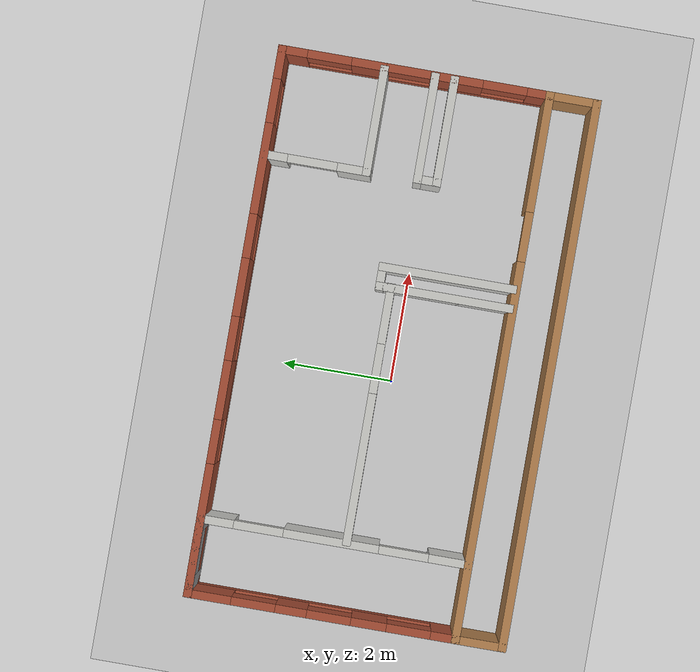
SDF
<?xml version="1.0"?>
<sdf version="1.7">
  <world name="empty_world">
    <model name="ground_plane">
      <static>1</static>
      <link name="link">
        <collision name="collision">
          <geometry>
            <plane>
              <normal>0 0 1</normal>
              <size>100 100</size>
            </plane>
          </geometry>
          <surface>
            <contact>
              <collide_bitmask>65535</collide_bitmask>
              <ode />
            </contact>
            <friction>
              <ode>
                <mu>100</mu>
                <mu2>50</mu2>
              </ode>
              <torsional>
                <ode />
              </torsional>
            </friction>
            <bounce />
          </surface>
          <max_contacts>10</max_contacts>
        </collision>
        <visual name="visual">
          <cast_shadows>0</cast_shadows>
          <geometry>
            <plane>
              <normal>0 0 1</normal>
              <size>100 100</size>
            </plane>
          </geometry>
          <material>
            <script>
              <uri>file://media/materials/scripts/gazebo.material</uri>
              <name>Gazebo/Grey</name>
            </script>
          </material>
        </visual>
        <self_collide>0</self_collide>
        <enable_wind>0</enable_wind>
        <kinematic>0</kinematic>
      </link>
    </model>
    <light name="sun" type="directional">
      <cast_shadows>1</cast_shadows>
      <pose>0 0 10 0 -0 0</pose>
      <diffuse>0.8 0.8 0.8 1</diffuse>
      <specular>0.2 0.2 0.2 1</specular>
      <attenuation>
        <range>1000</range>
        <constant>0.9</constant>
        <linear>0.01</linear>
        <quadratic>0.001</quadratic>
      </attenuation>
      <direction>-0.5 0.1 -0.9</direction>
      <spot>
        <inner_angle>0</inner_angle>
        <outer_angle>0</outer_angle>
        <falloff>0</falloff>
      </spot>
    </light>
    <physics type="ode">
      <max_step_size>0.001</max_step_size>
      <real_time_factor>1</real_time_factor>
      <real_time_update_rate>1000</real_time_update_rate>
    </physics>
    <gravity>0 0 -9.8</gravity>
    <magnetic_field>6e-06 2.3e-05 -4.2e-05</magnetic_field>
    <atmosphere type="adiabatic" />
    <scene>
      <ambient>0.4 0.4 0.4 1</ambient>
      <background>0.7 0.7 0.7 1</background>
      <shadows>1</shadows>
    </scene>
    <audio>
      <device>default</device>
    </audio>
    <wind />
    <spherical_coordinates>
      <surface_model>EARTH_WGS84</surface_model>
      <latitude_deg>0</latitude_deg>
      <longitude_deg>0</longitude_deg>
      <elevation>0</elevation>
      <heading_deg>0</heading_deg>
    </spherical_coordinates>
    <model name="Final_map">
      <pose>0.599018 0.77399 0 0 -0 0</pose>
      <link name="Wall_0">
        <pose>-0 2.1575 0 0 -0 0</pose>
        <visual name="Wall_0_Visual_0">
          <pose>-3.78964 0 1.25 0 -0 0</pose>
          <geometry>
            <box>
              <size>2.42073 0.15 2.5</size>
            </box>
          </geometry>
          <material>
            <script>
              <uri>file://media/materials/scripts/gazebo.material</uri>
              <name>Gazebo/Bricks</name>
            </script>
            <ambient>1 1 1 1</ambient>
          </material>
          <meta>
            <layer>0</layer>
          </meta>
        </visual>
        <collision name="Wall_0_Collision_0">
          <geometry>
            <box>
              <size>2.42073 0.15 2.5</size>
            </box>
          </geometry>
          <pose>-3.78964 0 1.25 0 -0 0</pose>
          <max_contacts>10</max_contacts>
          <surface>
            <contact>
              <ode />
            </contact>
            <bounce />
            <friction>
              <torsional>
                <ode />
              </torsional>
              <ode />
            </friction>
          </surface>
        </collision>
        <visual name="Wall_0_Visual_1">
          <pose>1.21036 0 0.25 0 -0 0</pose>
          <geometry>
            <box>
              <size>7.57927 0.15 0.5</size>
            </box>
          </geometry>
          <material>
            <script>
              <uri>file://media/materials/scripts/gazebo.material</uri>
              <name>Gazebo/Bricks</name>
            </script>
            <ambient>1 1 1 1</ambient>
          </material>
          <meta>
            <layer>0</layer>
          </meta>
        </visual>
        <collision name="Wall_0_Collision_1">
          <geometry>
            <box>
              <size>7.57927 0.15 0.5</size>
            </box>
          </geometry>
          <pose>1.21036 0 0.25 0 -0 0</pose>
          <max_contacts>10</max_contacts>
          <surface>
            <contact>
              <ode />
            </contact>
            <bounce />
            <friction>
              <torsional>
                <ode />
              </torsional>
              <ode />
            </friction>
          </surface>
        </collision>
        <visual name="Wall_0_Visual_2">
          <pose>-1.24394 0 1.5 0 -0 0</pose>
          <geometry>
            <box>
              <size>1.07068 0.15 2</size>
            </box>
          </geometry>
          <material>
            <script>
              <uri>file://media/materials/scripts/gazebo.material</uri>
              <name>Gazebo/Bricks</name>
            </script>
            <ambient>1 1 1 1</ambient>
          </material>
          <meta>
            <layer>0</layer>
          </meta>
        </visual>
        <collision name="Wall_0_Collision_2">
          <geometry>
            <box>
              <size>1.07068 0.15 2</size>
            </box>
          </geometry>
          <pose>-1.24394 0 1.5 0 -0 0</pose>
          <max_contacts>10</max_contacts>
          <surface>
            <contact>
              <ode />
            </contact>
            <bounce />
            <friction>
              <torsional>
                <ode />
              </torsional>
              <ode />
            </friction>
          </surface>
        </collision>
        <visual name="Wall_0_Visual_3">
          <pose>0.619136 0 1.5 0 -0 0</pose>
          <geometry>
            <box>
              <size>1.05547 0.15 2</size>
            </box>
          </geometry>
          <material>
            <script>
              <uri>file://media/materials/scripts/gazebo.material</uri>
              <name>Gazebo/Bricks</name>
            </script>
            <ambient>1 1 1 1</ambient>
          </material>
          <meta>
            <layer>0</layer>
          </meta>
        </visual>
        <collision name="Wall_0_Collision_3">
          <geometry>
            <box>
              <size>1.05547 0.15 2</size>
            </box>
          </geometry>
          <pose>0.619136 0 1.5 0 -0 0</pose>
          <max_contacts>10</max_contacts>
          <surface>
            <contact>
              <ode />
            </contact>
            <bounce />
            <friction>
              <torsional>
                <ode />
              </torsional>
              <ode />
            </friction>
          </surface>
        </collision>
        <visual name="Wall_0_Visual_4">
          <pose>2.77117 0 1.5 0 -0 0</pose>
          <geometry>
            <box>
              <size>1.64861 0.15 2</size>
            </box>
          </geometry>
          <material>
            <script>
              <uri>file://media/materials/scripts/gazebo.material</uri>
              <name>Gazebo/Bricks</name>
            </script>
            <ambient>1 1 1 1</ambient>
          </material>
          <meta>
            <layer>0</layer>
          </meta>
        </visual>
        <collision name="Wall_0_Collision_4">
          <geometry>
            <box>
              <size>1.64861 0.15 2</size>
            </box>
          </geometry>
          <pose>2.77117 0 1.5 0 -0 0</pose>
          <max_contacts>10</max_contacts>
          <surface>
            <contact>
              <ode />
            </contact>
            <bounce />
            <friction>
              <torsional>
                <ode />
              </torsional>
              <ode />
            </friction>
          </surface>
        </collision>
        <visual name="Wall_0_Visual_5">
          <pose>4.69774 0 1.5 0 -0 0</pose>
          <geometry>
            <box>
              <size>0.604521 0.15 2</size>
            </box>
          </geometry>
          <material>
            <script>
              <uri>file://media/materials/scripts/gazebo.material</uri>
              <name>Gazebo/Bricks</name>
            </script>
            <ambient>1 1 1 1</ambient>
          </material>
          <meta>
            <layer>0</layer>
          </meta>
        </visual>
        <collision name="Wall_0_Collision_5">
          <geometry>
            <box>
              <size>0.604521 0.15 2</size>
            </box>
          </geometry>
          <pose>4.69774 0 1.5 0 -0 0</pose>
          <max_contacts>10</max_contacts>
          <surface>
            <contact>
              <ode />
            </contact>
            <bounce />
            <friction>
              <torsional>
                <ode />
              </torsional>
              <ode />
            </friction>
          </surface>
        </collision>
        <visual name="Wall_0_Visual_6">
          <pose>-2.17927 0 1.9 0 -0 0</pose>
          <geometry>
            <box>
              <size>0.8 0.15 1.2</size>
            </box>
          </geometry>
          <material>
            <script>
              <uri>file://media/materials/scripts/gazebo.material</uri>
              <name>Gazebo/Bricks</name>
            </script>
            <ambient>1 1 1 1</ambient>
          </material>
          <meta>
            <layer>0</layer>
          </meta>
        </visual>
        <collision name="Wall_0_Collision_6">
          <geometry>
            <box>
              <size>0.8 0.15 1.2</size>
            </box>
          </geometry>
          <pose>-2.17927 0 1.9 0 -0 0</pose>
          <max_contacts>10</max_contacts>
          <surface>
            <contact>
              <ode />
            </contact>
            <bounce />
            <friction>
              <torsional>
                <ode />
              </torsional>
              <ode />
            </friction>
          </surface>
        </collision>
        <visual name="Wall_0_Visual_7">
          <pose>-0.308597 0 1.9 0 -0 0</pose>
          <geometry>
            <box>
              <size>0.8 0.15 1.2</size>
            </box>
          </geometry>
          <material>
            <script>
              <uri>file://media/materials/scripts/gazebo.material</uri>
              <name>Gazebo/Bricks</name>
            </script>
            <ambient>1 1 1 1</ambient>
          </material>
          <meta>
            <layer>0</layer>
          </meta>
        </visual>
        <collision name="Wall_0_Collision_7">
          <geometry>
            <box>
              <size>0.8 0.15 1.2</size>
            </box>
          </geometry>
          <pose>-0.308597 0 1.9 0 -0 0</pose>
          <max_contacts>10</max_contacts>
          <surface>
            <contact>
              <ode />
            </contact>
            <bounce />
            <friction>
              <torsional>
                <ode />
              </torsional>
              <ode />
            </friction>
          </surface>
        </collision>
        <visual name="Wall_0_Visual_8">
          <pose>1.54687 0 1.9 0 -0 0</pose>
          <geometry>
            <box>
              <size>0.8 0.15 1.2</size>
            </box>
          </geometry>
          <material>
            <script>
              <uri>file://media/materials/scripts/gazebo.material</uri>
              <name>Gazebo/Bricks</name>
            </script>
            <ambient>1 1 1 1</ambient>
          </material>
          <meta>
            <layer>0</layer>
          </meta>
        </visual>
        <collision name="Wall_0_Collision_8">
          <geometry>
            <box>
              <size>0.8 0.15 1.2</size>
            </box>
          </geometry>
          <pose>1.54687 0 1.9 0 -0 0</pose>
          <max_contacts>10</max_contacts>
          <surface>
            <contact>
              <ode />
            </contact>
            <bounce />
            <friction>
              <torsional>
                <ode />
              </torsional>
              <ode />
            </friction>
          </surface>
        </collision>
        <visual name="Wall_0_Visual_9">
          <pose>3.99548 0 1.9 0 -0 0</pose>
          <geometry>
            <box>
              <size>0.8 0.15 1.2</size>
            </box>
          </geometry>
          <material>
            <script>
              <uri>file://media/materials/scripts/gazebo.material</uri>
              <name>Gazebo/Bricks</name>
            </script>
            <ambient>1 1 1 1</ambient>
          </material>
          <meta>
            <layer>0</layer>
          </meta>
        </visual>
        <collision name="Wall_0_Collision_9">
          <geometry>
            <box>
              <size>0.8 0.15 1.2</size>
            </box>
          </geometry>
          <pose>3.99548 0 1.9 0 -0 0</pose>
          <max_contacts>10</max_contacts>
          <surface>
            <contact>
              <ode />
            </contact>
            <bounce />
            <friction>
              <torsional>
                <ode />
              </torsional>
              <ode />
            </friction>
          </surface>
        </collision>
        <self_collide>0</self_collide>
        <enable_wind>0</enable_wind>
        <kinematic>0</kinematic>
      </link>
      <link name="Wall_1">
        <pose>4.925 -0.2675 0 0 -0 -1.5708</pose>
        <visual name="Wall_1_Visual_0">
          <pose>-2.23217 0 1.25 0 -0 0</pose>
          <geometry>
            <box>
              <size>0.535656 0.15 2.5</size>
            </box>
          </geometry>
          <material>
            <script>
              <uri>file://media/materials/scripts/gazebo.material</uri>
              <name>Gazebo/Bricks</name>
            </script>
            <ambient>1 1 1 1</ambient>
          </material>
          <meta>
            <layer>0</layer>
          </meta>
        </visual>
        <collision name="Wall_1_Collision_0">
          <geometry>
            <box>
              <size>0.535656 0.15 2.5</size>
            </box>
          </geometry>
          <pose>-2.23217 0 1.25 0 -0 0</pose>
          <max_contacts>10</max_contacts>
          <surface>
            <contact>
              <ode />
            </contact>
            <bounce />
            <friction>
              <torsional>
                <ode />
              </torsional>
              <ode />
            </friction>
          </surface>
        </collision>
        <visual name="Wall_1_Visual_1">
          <pose>0.267828 0 0.25 0 -0 0</pose>
          <geometry>
            <box>
              <size>4.46434 0.15 0.5</size>
            </box>
          </geometry>
          <material>
            <script>
              <uri>file://media/materials/scripts/gazebo.material</uri>
              <name>Gazebo/Bricks</name>
            </script>
            <ambient>1 1 1 1</ambient>
          </material>
          <meta>
            <layer>0</layer>
          </meta>
        </visual>
        <collision name="Wall_1_Collision_1">
          <geometry>
            <box>
              <size>4.46434 0.15 0.5</size>
            </box>
          </geometry>
          <pose>0.267828 0 0.25 0 -0 0</pose>
          <max_contacts>10</max_contacts>
          <surface>
            <contact>
              <ode />
            </contact>
            <bounce />
            <friction>
              <torsional>
                <ode />
              </torsional>
              <ode />
            </friction>
          </surface>
        </collision>
        <visual name="Wall_1_Visual_2">
          <pose>-0.849532 0 1.5 0 -0 0</pose>
          <geometry>
            <box>
              <size>0.629622 0.15 2</size>
            </box>
          </geometry>
          <material>
            <script>
              <uri>file://media/materials/scripts/gazebo.material</uri>
              <name>Gazebo/Bricks</name>
            </script>
            <ambient>1 1 1 1</ambient>
          </material>
          <meta>
            <layer>0</layer>
          </meta>
        </visual>
        <collision name="Wall_1_Collision_2">
          <geometry>
            <box>
              <size>0.629622 0.15 2</size>
            </box>
          </geometry>
          <pose>-0.849532 0 1.5 0 -0 0</pose>
          <max_contacts>10</max_contacts>
          <surface>
            <contact>
              <ode />
            </contact>
            <bounce />
            <friction>
              <torsional>
                <ode />
              </torsional>
              <ode />
            </friction>
          </surface>
        </collision>
        <visual name="Wall_1_Visual_3">
          <pose>0.739782 0 1.5 0 -0 0</pose>
          <geometry>
            <box>
              <size>0.949007 0.15 2</size>
            </box>
          </geometry>
          <material>
            <script>
              <uri>file://media/materials/scripts/gazebo.material</uri>
              <name>Gazebo/Bricks</name>
            </script>
            <ambient>1 1 1 1</ambient>
          </material>
          <meta>
            <layer>0</layer>
          </meta>
        </visual>
        <collision name="Wall_1_Collision_3">
          <geometry>
            <box>
              <size>0.949007 0.15 2</size>
            </box>
          </geometry>
          <pose>0.739782 0 1.5 0 -0 0</pose>
          <max_contacts>10</max_contacts>
          <surface>
            <contact>
              <ode />
            </contact>
            <bounce />
            <friction>
              <torsional>
                <ode />
              </torsional>
              <ode />
            </friction>
          </surface>
        </collision>
        <visual name="Wall_1_Visual_4">
          <pose>2.25714 0 1.5 0 -0 0</pose>
          <geometry>
            <box>
              <size>0.485715 0.15 2</size>
            </box>
          </geometry>
          <material>
            <script>
              <uri>file://media/materials/scripts/gazebo.material</uri>
              <name>Gazebo/Bricks</name>
            </script>
            <ambient>1 1 1 1</ambient>
          </material>
          <meta>
            <layer>0</layer>
          </meta>
        </visual>
        <collision name="Wall_1_Collision_4">
          <geometry>
            <box>
              <size>0.485715 0.15 2</size>
            </box>
          </geometry>
          <pose>2.25714 0 1.5 0 -0 0</pose>
          <max_contacts>10</max_contacts>
          <surface>
            <contact>
              <ode />
            </contact>
            <bounce />
            <friction>
              <torsional>
                <ode />
              </torsional>
              <ode />
            </friction>
          </surface>
        </collision>
        <visual name="Wall_1_Visual_5">
          <pose>-1.56434 0 1.9 0 -0 0</pose>
          <geometry>
            <box>
              <size>0.8 0.15 1.2</size>
            </box>
          </geometry>
          <material>
            <script>
              <uri>file://media/materials/scripts/gazebo.material</uri>
              <name>Gazebo/Bricks</name>
            </script>
            <ambient>1 1 1 1</ambient>
          </material>
          <meta>
            <layer>0</layer>
          </meta>
        </visual>
        <collision name="Wall_1_Collision_5">
          <geometry>
            <box>
              <size>0.8 0.15 1.2</size>
            </box>
          </geometry>
          <pose>-1.56434 0 1.9 0 -0 0</pose>
          <max_contacts>10</max_contacts>
          <surface>
            <contact>
              <ode />
            </contact>
            <bounce />
            <friction>
              <torsional>
                <ode />
              </torsional>
              <ode />
            </friction>
          </surface>
        </collision>
        <visual name="Wall_1_Visual_6">
          <pose>-0.134721 0 1.9 0 -0 0</pose>
          <geometry>
            <box>
              <size>0.8 0.15 1.2</size>
            </box>
          </geometry>
          <material>
            <script>
              <uri>file://media/materials/scripts/gazebo.material</uri>
              <name>Gazebo/Bricks</name>
            </script>
            <ambient>1 1 1 1</ambient>
          </material>
          <meta>
            <layer>0</layer>
          </meta>
        </visual>
        <collision name="Wall_1_Collision_6">
          <geometry>
            <box>
              <size>0.8 0.15 1.2</size>
            </box>
          </geometry>
          <pose>-0.134721 0 1.9 0 -0 0</pose>
          <max_contacts>10</max_contacts>
          <surface>
            <contact>
              <ode />
            </contact>
            <bounce />
            <friction>
              <torsional>
                <ode />
              </torsional>
              <ode />
            </friction>
          </surface>
        </collision>
        <visual name="Wall_1_Visual_7">
          <pose>1.61428 0 1.9 0 -0 0</pose>
          <geometry>
            <box>
              <size>0.8 0.15 1.2</size>
            </box>
          </geometry>
          <material>
            <script>
              <uri>file://media/materials/scripts/gazebo.material</uri>
              <name>Gazebo/Bricks</name>
            </script>
            <ambient>1 1 1 1</ambient>
          </material>
          <meta>
            <layer>0</layer>
          </meta>
        </visual>
        <collision name="Wall_1_Collision_7">
          <geometry>
            <box>
              <size>0.8 0.15 1.2</size>
            </box>
          </geometry>
          <pose>1.61428 0 1.9 0 -0 0</pose>
          <max_contacts>10</max_contacts>
          <surface>
            <contact>
              <ode />
            </contact>
            <bounce />
            <friction>
              <torsional>
                <ode />
              </torsional>
              <ode />
            </friction>
          </surface>
        </collision>
        <self_collide>0</self_collide>
        <enable_wind>0</enable_wind>
        <kinematic>0</kinematic>
      </link>
      <link name="Wall_10">
        <collision name="Wall_10_Collision">
          <geometry>
            <box>
              <size>2 0.15 2.5</size>
            </box>
          </geometry>
          <pose>0 0 1.25 0 -0 0</pose>
          <max_contacts>10</max_contacts>
          <surface>
            <contact>
              <ode />
            </contact>
            <bounce />
            <friction>
              <torsional>
                <ode />
              </torsional>
              <ode />
            </friction>
          </surface>
        </collision>
        <visual name="Wall_10_Visual">
          <pose>0 0 1.25 0 -0 0</pose>
          <geometry>
            <box>
              <size>2 0.15 2.5</size>
            </box>
          </geometry>
          <material>
            <script>
              <uri>file://media/materials/scripts/gazebo.material</uri>
              <name>Gazebo/CeilingTiled</name>
            </script>
            <ambient>1 1 1 1</ambient>
          </material>
          <meta>
            <layer>0</layer>
          </meta>
        </visual>
        <pose>3.983 -0.619459 0 0 -0 3.14159</pose>
        <self_collide>0</self_collide>
        <enable_wind>0</enable_wind>
        <kinematic>0</kinematic>
      </link>
      <link name="Wall_11">
        <collision name="Wall_11_Collision">
          <geometry>
            <box>
              <size>0.5 0.15 2.5</size>
            </box>
          </geometry>
          <pose>0 0 1.25 0 -0 0</pose>
          <max_contacts>10</max_contacts>
          <surface>
            <contact>
              <ode />
            </contact>
            <bounce />
            <friction>
              <torsional>
                <ode />
              </torsional>
              <ode />
            </friction>
          </surface>
        </collision>
        <visual name="Wall_11_Visual">
          <pose>0 0 1.25 0 -0 0</pose>
          <geometry>
            <box>
              <size>0.5 0.15 2.5</size>
            </box>
          </geometry>
          <material>
            <script>
              <uri>file://media/materials/scripts/gazebo.material</uri>
              <name>Gazebo/CeilingTiled</name>
            </script>
            <ambient>1 1 1 1</ambient>
          </material>
          <meta>
            <layer>0</layer>
          </meta>
        </visual>
        <pose>3.058 -0.794459 0 0 -0 -1.5708</pose>
        <self_collide>0</self_collide>
        <enable_wind>0</enable_wind>
        <kinematic>0</kinematic>
      </link>
      <link name="Wall_12">
        <collision name="Wall_12_Collision">
          <geometry>
            <box>
              <size>2 0.15 2.5</size>
            </box>
          </geometry>
          <pose>0 0 1.25 0 -0 0</pose>
          <max_contacts>10</max_contacts>
          <surface>
            <contact>
              <ode />
            </contact>
            <bounce />
            <friction>
              <torsional>
                <ode />
              </torsional>
              <ode />
            </friction>
          </surface>
        </collision>
        <visual name="Wall_12_Visual">
          <pose>0 0 1.25 0 -0 0</pose>
          <geometry>
            <box>
              <size>2 0.15 2.5</size>
            </box>
          </geometry>
          <material>
            <script>
              <uri>file://media/materials/scripts/gazebo.material</uri>
              <name>Gazebo/CeilingTiled</name>
            </script>
            <ambient>1 1 1 1</ambient>
          </material>
          <meta>
            <layer>0</layer>
          </meta>
        </visual>
        <pose>3.983 -0.969459 0 0 -0 0</pose>
        <self_collide>0</self_collide>
        <enable_wind>0</enable_wind>
        <kinematic>0</kinematic>
      </link>
      <link name="Wall_14">
        <collision name="Wall_14_Collision">
          <geometry>
            <box>
              <size>2.5 0.15 2.5</size>
            </box>
          </geometry>
          <pose>0 0 1.25 0 -0 0</pose>
          <max_contacts>10</max_contacts>
          <surface>
            <contact>
              <ode />
            </contact>
            <bounce />
            <friction>
              <torsional>
                <ode />
              </torsional>
              <ode />
            </friction>
          </surface>
        </collision>
        <visual name="Wall_14_Visual">
          <pose>0 0 1.25 0 -0 0</pose>
          <geometry>
            <box>
              <size>2.5 0.15 2.5</size>
            </box>
          </geometry>
          <material>
            <script>
              <uri>file://media/materials/scripts/gazebo.material</uri>
              <name>Gazebo/CeilingTiled</name>
            </script>
            <ambient>1 1 1 1</ambient>
          </material>
          <meta>
            <layer>0</layer>
          </meta>
        </visual>
        <pose>1.40999 -1.45201 0 0 -0 1.5708</pose>
        <self_collide>0</self_collide>
        <enable_wind>0</enable_wind>
        <kinematic>0</kinematic>
      </link>
      <link name="Wall_15">
        <collision name="Wall_15_Collision">
          <geometry>
            <box>
              <size>0.5 0.15 2.5</size>
            </box>
          </geometry>
          <pose>0 0 1.25 0 -0 0</pose>
          <max_contacts>10</max_contacts>
          <surface>
            <contact>
              <ode />
            </contact>
            <bounce />
            <friction>
              <torsional>
                <ode />
              </torsional>
              <ode />
            </friction>
          </surface>
        </collision>
        <visual name="Wall_15_Visual">
          <pose>0 0 1.25 0 -0 0</pose>
          <geometry>
            <box>
              <size>0.5 0.15 2.5</size>
            </box>
          </geometry>
          <material>
            <script>
              <uri>file://media/materials/scripts/gazebo.material</uri>
              <name>Gazebo/CeilingTiled</name>
            </script>
            <ambient>1 1 1 1</ambient>
          </material>
          <meta>
            <layer>0</layer>
          </meta>
        </visual>
        <pose>1.23499 -0.277014 0 0 -0 3.14159</pose>
        <self_collide>0</self_collide>
        <enable_wind>0</enable_wind>
        <kinematic>0</kinematic>
      </link>
      <link name="Wall_16">
        <collision name="Wall_16_Collision">
          <geometry>
            <box>
              <size>2.5 0.15 2.5</size>
            </box>
          </geometry>
          <pose>0 0 1.25 0 -0 0</pose>
          <max_contacts>10</max_contacts>
          <surface>
            <contact>
              <ode />
            </contact>
            <bounce />
            <friction>
              <torsional>
                <ode />
              </torsional>
              <ode />
            </friction>
          </surface>
        </collision>
        <visual name="Wall_16_Visual">
          <pose>0 0 1.25 0 -0 0</pose>
          <geometry>
            <box>
              <size>2.5 0.15 2.5</size>
            </box>
          </geometry>
          <material>
            <script>
              <uri>file://media/materials/scripts/gazebo.material</uri>
              <name>Gazebo/CeilingTiled</name>
            </script>
            <ambient>1 1 1 1</ambient>
          </material>
          <meta>
            <layer>0</layer>
          </meta>
        </visual>
        <pose>1.05999 -1.45201 0 0 -0 -1.5708</pose>
        <self_collide>0</self_collide>
        <enable_wind>0</enable_wind>
        <kinematic>0</kinematic>
      </link>
      <link name="Wall_17">
        <collision name="Wall_17_Collision">
          <geometry>
            <box>
              <size>1.5 0.15 2.5</size>
            </box>
          </geometry>
          <pose>0 0 1.25 0 -0 0</pose>
          <max_contacts>10</max_contacts>
          <surface>
            <contact>
              <ode />
            </contact>
            <bounce />
            <friction>
              <torsional>
                <ode />
              </torsional>
              <ode />
            </friction>
          </surface>
        </collision>
        <visual name="Wall_17_Visual">
          <pose>0 0 1.25 0 -0 0</pose>
          <geometry>
            <box>
              <size>1.5 0.15 2.5</size>
            </box>
          </geometry>
          <material>
            <script>
              <uri>file://media/materials/scripts/gazebo.material</uri>
              <name>Gazebo/CeilingTiled</name>
            </script>
            <ambient>1 1 1 1</ambient>
          </material>
          <meta>
            <layer>0</layer>
          </meta>
        </visual>
        <pose>1.05999 -1.95201 0 0 -0 1.5708</pose>
        <self_collide>0</self_collide>
        <enable_wind>0</enable_wind>
        <kinematic>0</kinematic>
      </link>
      <link name="Wall_19">
        <pose>-1.23285 -0.48258 0 0 -0 0</pose>
        <visual name="Wall_19_Visual_0">
          <pose>-0.995999 0 1.25 0 -0 0</pose>
          <geometry>
            <box>
              <size>2.758 0.15 2.5</size>
            </box>
          </geometry>
          <material>
            <script>
              <uri>file://media/materials/scripts/gazebo.material</uri>
              <name>Gazebo/CeilingTiled</name>
            </script>
            <ambient>1 1 1 1</ambient>
          </material>
          <meta>
            <layer>0</layer>
          </meta>
        </visual>
        <collision name="Wall_19_Collision_0">
          <geometry>
            <box>
              <size>2.758 0.15 2.5</size>
            </box>
          </geometry>
          <pose>-0.995999 0 1.25 0 -0 0</pose>
          <max_contacts>10</max_contacts>
          <surface>
            <contact>
              <ode />
            </contact>
            <bounce />
            <friction>
              <torsional>
                <ode />
              </torsional>
              <ode />
            </friction>
          </surface>
        </collision>
        <visual name="Wall_19_Visual_1">
          <pose>1.829 0 1.25 0 -0 0</pose>
          <geometry>
            <box>
              <size>1.092 0.15 2.5</size>
            </box>
          </geometry>
          <material>
            <script>
              <uri>file://media/materials/scripts/gazebo.material</uri>
              <name>Gazebo/CeilingTiled</name>
            </script>
            <ambient>1 1 1 1</ambient>
          </material>
          <meta>
            <layer>0</layer>
          </meta>
        </visual>
        <collision name="Wall_19_Collision_1">
          <geometry>
            <box>
              <size>1.092 0.15 2.5</size>
            </box>
          </geometry>
          <pose>1.829 0 1.25 0 -0 0</pose>
          <max_contacts>10</max_contacts>
          <surface>
            <contact>
              <ode />
            </contact>
            <bounce />
            <friction>
              <torsional>
                <ode />
              </torsional>
              <ode />
            </friction>
          </surface>
        </collision>
        <visual name="Wall_19_Visual_2">
          <pose>0.833002 0 2.25 0 -0 0</pose>
          <geometry>
            <box>
              <size>0.9 0.15 0.5</size>
            </box>
          </geometry>
          <material>
            <script>
              <uri>file://media/materials/scripts/gazebo.material</uri>
              <name>Gazebo/CeilingTiled</name>
            </script>
            <ambient>1 1 1 1</ambient>
          </material>
          <meta>
            <layer>0</layer>
          </meta>
        </visual>
        <collision name="Wall_19_Collision_2">
          <geometry>
            <box>
              <size>0.9 0.15 0.5</size>
            </box>
          </geometry>
          <pose>0.833002 0 2.25 0 -0 0</pose>
          <max_contacts>10</max_contacts>
          <surface>
            <contact>
              <ode />
            </contact>
            <bounce />
            <friction>
              <torsional>
                <ode />
              </torsional>
              <ode />
            </friction>
          </surface>
        </collision>
        <self_collide>0</self_collide>
        <enable_wind>0</enable_wind>
        <kinematic>0</kinematic>
      </link>
      <link name="Wall_2">
        <pose>-0 -2.6925 0 0 -0 3.14159</pose>
        <visual name="Wall_2_Visual_0">
          <pose>-3.90907 0 1.25 0 -0 0</pose>
          <geometry>
            <box>
              <size>2.18186 0.15 2.5</size>
            </box>
          </geometry>
          <material>
            <script>
              <uri>file://media/materials/scripts/gazebo.material</uri>
              <name>Gazebo/Wood</name>
            </script>
            <ambient>1 1 1 1</ambient>
          </material>
          <meta>
            <layer>0</layer>
          </meta>
        </visual>
        <collision name="Wall_2_Collision_0">
          <geometry>
            <box>
              <size>2.18186 0.15 2.5</size>
            </box>
          </geometry>
          <pose>-3.90907 0 1.25 0 -0 0</pose>
          <max_contacts>10</max_contacts>
          <surface>
            <contact>
              <ode />
            </contact>
            <bounce />
            <friction>
              <torsional>
                <ode />
              </torsional>
              <ode />
            </friction>
          </surface>
        </collision>
        <visual name="Wall_2_Visual_1">
          <pose>1.54093 0 1.25 0 -0 0</pose>
          <geometry>
            <box>
              <size>6.91814 0.15 2.5</size>
            </box>
          </geometry>
          <material>
            <script>
              <uri>file://media/materials/scripts/gazebo.material</uri>
              <name>Gazebo/Wood</name>
            </script>
            <ambient>1 1 1 1</ambient>
          </material>
          <meta>
            <layer>0</layer>
          </meta>
        </visual>
        <collision name="Wall_2_Collision_1">
          <geometry>
            <box>
              <size>6.91814 0.15 2.5</size>
            </box>
          </geometry>
          <pose>1.54093 0 1.25 0 -0 0</pose>
          <max_contacts>10</max_contacts>
          <surface>
            <contact>
              <ode />
            </contact>
            <bounce />
            <friction>
              <torsional>
                <ode />
              </torsional>
              <ode />
            </friction>
          </surface>
        </collision>
        <visual name="Wall_2_Visual_2">
          <pose>-2.36814 0 2.25 0 -0 0</pose>
          <geometry>
            <box>
              <size>0.9 0.15 0.5</size>
            </box>
          </geometry>
          <material>
            <script>
              <uri>file://media/materials/scripts/gazebo.material</uri>
              <name>Gazebo/Wood</name>
            </script>
            <ambient>1 1 1 1</ambient>
          </material>
          <meta>
            <layer>0</layer>
          </meta>
        </visual>
        <collision name="Wall_2_Collision_2">
          <geometry>
            <box>
              <size>0.9 0.15 0.5</size>
            </box>
          </geometry>
          <pose>-2.36814 0 2.25 0 -0 0</pose>
          <max_contacts>10</max_contacts>
          <surface>
            <contact>
              <ode />
            </contact>
            <bounce />
            <friction>
              <torsional>
                <ode />
              </torsional>
              <ode />
            </friction>
          </surface>
        </collision>
        <self_collide>0</self_collide>
        <enable_wind>0</enable_wind>
        <kinematic>0</kinematic>
      </link>
      <link name="Wall_21">
        <collision name="Wall_21_Collision">
          <geometry>
            <box>
              <size>1 0.15 2.5</size>
            </box>
          </geometry>
          <pose>0 0 1.25 0 -0 0</pose>
          <max_contacts>10</max_contacts>
          <surface>
            <contact>
              <ode />
            </contact>
            <bounce />
            <friction>
              <torsional>
                <ode />
              </torsional>
              <ode />
            </friction>
          </surface>
        </collision>
        <visual name="Wall_21_Visual">
          <pose>0 0 1.25 0 -0 0</pose>
          <geometry>
            <box>
              <size>1 0.15 2.5</size>
            </box>
          </geometry>
          <material>
            <script>
              <uri>file://media/materials/scripts/gazebo.material</uri>
              <name>Gazebo/Wood</name>
            </script>
            <ambient>1 1 1 1</ambient>
          </material>
          <meta>
            <layer>0</layer>
          </meta>
        </visual>
        <pose>-4.925 -3.1175 0 0 -0 -1.5708</pose>
        <self_collide>0</self_collide>
        <enable_wind>0</enable_wind>
        <kinematic>0</kinematic>
      </link>
      <link name="Wall_22">
        <collision name="Wall_22_Collision">
          <geometry>
            <box>
              <size>10 0.15 2.5</size>
            </box>
          </geometry>
          <pose>0 0 1.25 0 -0 0</pose>
          <max_contacts>10</max_contacts>
          <surface>
            <contact>
              <ode />
            </contact>
            <bounce />
            <friction>
              <torsional>
                <ode />
              </torsional>
              <ode />
            </friction>
          </surface>
        </collision>
        <visual name="Wall_22_Visual">
          <pose>0 0 1.25 0 -0 0</pose>
          <geometry>
            <box>
              <size>10 0.15 2.5</size>
            </box>
          </geometry>
          <material>
            <script>
              <uri>file://media/materials/scripts/gazebo.material</uri>
              <name>Gazebo/Wood</name>
            </script>
            <ambient>1 1 1 1</ambient>
          </material>
          <meta>
            <layer>0</layer>
          </meta>
        </visual>
        <pose>-0 -3.5425 0 0 -0 0</pose>
        <self_collide>0</self_collide>
        <enable_wind>0</enable_wind>
        <kinematic>0</kinematic>
      </link>
      <link name="Wall_23">
        <collision name="Wall_23_Collision">
          <geometry>
            <box>
              <size>1 0.15 2.5</size>
            </box>
          </geometry>
          <pose>0 0 1.25 0 -0 0</pose>
          <max_contacts>10</max_contacts>
          <surface>
            <contact>
              <ode />
            </contact>
            <bounce />
            <friction>
              <torsional>
                <ode />
              </torsional>
              <ode />
            </friction>
          </surface>
        </collision>
        <visual name="Wall_23_Visual">
          <pose>0 0 1.25 0 -0 0</pose>
          <geometry>
            <box>
              <size>1 0.15 2.5</size>
            </box>
          </geometry>
          <material>
            <script>
              <uri>file://media/materials/scripts/gazebo.material</uri>
              <name>Gazebo/Wood</name>
            </script>
            <ambient>1 1 1 1</ambient>
          </material>
          <meta>
            <layer>0</layer>
          </meta>
        </visual>
        <pose>4.925 -3.1175 0 0 -0 1.5708</pose>
        <self_collide>0</self_collide>
        <enable_wind>0</enable_wind>
        <kinematic>0</kinematic>
      </link>
      <link name="Wall_3">
        <pose>-4.925 -0.2675 0 0 -0 1.5708</pose>
        <visual name="Wall_3_Visual_0">
          <pose>-2.23433 0 1.25 0 -0 0</pose>
          <geometry>
            <box>
              <size>0.531341 0.15 2.5</size>
            </box>
          </geometry>
          <material>
            <script>
              <uri>file://media/materials/scripts/gazebo.material</uri>
              <name>Gazebo/Bricks</name>
            </script>
            <ambient>1 1 1 1</ambient>
          </material>
          <meta>
            <layer>0</layer>
          </meta>
        </visual>
        <collision name="Wall_3_Collision_0">
          <geometry>
            <box>
              <size>0.531341 0.15 2.5</size>
            </box>
          </geometry>
          <pose>-2.23433 0 1.25 0 -0 0</pose>
          <max_contacts>10</max_contacts>
          <surface>
            <contact>
              <ode />
            </contact>
            <bounce />
            <friction>
              <torsional>
                <ode />
              </torsional>
              <ode />
            </friction>
          </surface>
        </collision>
        <visual name="Wall_3_Visual_1">
          <pose>0.265671 0 0.25 0 -0 0</pose>
          <geometry>
            <box>
              <size>4.46866 0.15 0.5</size>
            </box>
          </geometry>
          <material>
            <script>
              <uri>file://media/materials/scripts/gazebo.material</uri>
              <name>Gazebo/Bricks</name>
            </script>
            <ambient>1 1 1 1</ambient>
          </material>
          <meta>
            <layer>0</layer>
          </meta>
        </visual>
        <collision name="Wall_3_Collision_1">
          <geometry>
            <box>
              <size>4.46866 0.15 0.5</size>
            </box>
          </geometry>
          <pose>0.265671 0 0.25 0 -0 0</pose>
          <max_contacts>10</max_contacts>
          <surface>
            <contact>
              <ode />
            </contact>
            <bounce />
            <friction>
              <torsional>
                <ode />
              </torsional>
              <ode />
            </friction>
          </surface>
        </collision>
        <visual name="Wall_3_Visual_2">
          <pose>-0.846243 0 1.5 0 -0 0</pose>
          <geometry>
            <box>
              <size>0.644831 0.15 2</size>
            </box>
          </geometry>
          <material>
            <script>
              <uri>file://media/materials/scripts/gazebo.material</uri>
              <name>Gazebo/Bricks</name>
            </script>
            <ambient>1 1 1 1</ambient>
          </material>
          <meta>
            <layer>0</layer>
          </meta>
        </visual>
        <collision name="Wall_3_Collision_2">
          <geometry>
            <box>
              <size>0.644831 0.15 2</size>
            </box>
          </geometry>
          <pose>-0.846243 0 1.5 0 -0 0</pose>
          <max_contacts>10</max_contacts>
          <surface>
            <contact>
              <ode />
            </contact>
            <bounce />
            <friction>
              <torsional>
                <ode />
              </torsional>
              <ode />
            </friction>
          </surface>
        </collision>
        <visual name="Wall_3_Visual_3">
          <pose>0.560566 0 1.5 0 -0 0</pose>
          <geometry>
            <box>
              <size>0.568788 0.15 2</size>
            </box>
          </geometry>
          <material>
            <script>
              <uri>file://media/materials/scripts/gazebo.material</uri>
              <name>Gazebo/Bricks</name>
            </script>
            <ambient>1 1 1 1</ambient>
          </material>
          <meta>
            <layer>0</layer>
          </meta>
        </visual>
        <collision name="Wall_3_Collision_3">
          <geometry>
            <box>
              <size>0.568788 0.15 2</size>
            </box>
          </geometry>
          <pose>0.560566 0 1.5 0 -0 0</pose>
          <max_contacts>10</max_contacts>
          <surface>
            <contact>
              <ode />
            </contact>
            <bounce />
            <friction>
              <torsional>
                <ode />
              </torsional>
              <ode />
            </friction>
          </surface>
        </collision>
        <visual name="Wall_3_Visual_4">
          <pose>2.07248 0 1.5 0 -0 0</pose>
          <geometry>
            <box>
              <size>0.85504 0.15 2</size>
            </box>
          </geometry>
          <material>
            <script>
              <uri>file://media/materials/scripts/gazebo.material</uri>
              <name>Gazebo/Bricks</name>
            </script>
            <ambient>1 1 1 1</ambient>
          </material>
          <meta>
            <layer>0</layer>
          </meta>
        </visual>
        <collision name="Wall_3_Collision_4">
          <geometry>
            <box>
              <size>0.85504 0.15 2</size>
            </box>
          </geometry>
          <pose>2.07248 0 1.5 0 -0 0</pose>
          <max_contacts>10</max_contacts>
          <surface>
            <contact>
              <ode />
            </contact>
            <bounce />
            <friction>
              <torsional>
                <ode />
              </torsional>
              <ode />
            </friction>
          </surface>
        </collision>
        <visual name="Wall_3_Visual_5">
          <pose>-1.56866 0 1.9 0 -0 0</pose>
          <geometry>
            <box>
              <size>0.8 0.15 1.2</size>
            </box>
          </geometry>
          <material>
            <script>
              <uri>file://media/materials/scripts/gazebo.material</uri>
              <name>Gazebo/Bricks</name>
            </script>
            <ambient>1 1 1 1</ambient>
          </material>
          <meta>
            <layer>0</layer>
          </meta>
        </visual>
        <collision name="Wall_3_Collision_5">
          <geometry>
            <box>
              <size>0.8 0.15 1.2</size>
            </box>
          </geometry>
          <pose>-1.56866 0 1.9 0 -0 0</pose>
          <max_contacts>10</max_contacts>
          <surface>
            <contact>
              <ode />
            </contact>
            <bounce />
            <friction>
              <torsional>
                <ode />
              </torsional>
              <ode />
            </friction>
          </surface>
        </collision>
        <visual name="Wall_3_Visual_6">
          <pose>-0.123828 0 1.9 0 -0 0</pose>
          <geometry>
            <box>
              <size>0.8 0.15 1.2</size>
            </box>
          </geometry>
          <material>
            <script>
              <uri>file://media/materials/scripts/gazebo.material</uri>
              <name>Gazebo/Bricks</name>
            </script>
            <ambient>1 1 1 1</ambient>
          </material>
          <meta>
            <layer>0</layer>
          </meta>
        </visual>
        <collision name="Wall_3_Collision_6">
          <geometry>
            <box>
              <size>0.8 0.15 1.2</size>
            </box>
          </geometry>
          <pose>-0.123828 0 1.9 0 -0 0</pose>
          <max_contacts>10</max_contacts>
          <surface>
            <contact>
              <ode />
            </contact>
            <bounce />
            <friction>
              <torsional>
                <ode />
              </torsional>
              <ode />
            </friction>
          </surface>
        </collision>
        <visual name="Wall_3_Visual_7">
          <pose>1.24496 0 1.9 0 -0 0</pose>
          <geometry>
            <box>
              <size>0.8 0.15 1.2</size>
            </box>
          </geometry>
          <material>
            <script>
              <uri>file://media/materials/scripts/gazebo.material</uri>
              <name>Gazebo/Bricks</name>
            </script>
            <ambient>1 1 1 1</ambient>
          </material>
          <meta>
            <layer>0</layer>
          </meta>
        </visual>
        <collision name="Wall_3_Collision_7">
          <geometry>
            <box>
              <size>0.8 0.15 1.2</size>
            </box>
          </geometry>
          <pose>1.24496 0 1.9 0 -0 0</pose>
          <max_contacts>10</max_contacts>
          <surface>
            <contact>
              <ode />
            </contact>
            <bounce />
            <friction>
              <torsional>
                <ode />
              </torsional>
              <ode />
            </friction>
          </surface>
        </collision>
        <self_collide>0</self_collide>
        <enable_wind>0</enable_wind>
        <kinematic>0</kinematic>
      </link>
      <link name="Wall_4">
        <pose>-4.25 2.1575 0 0 -0 0</pose>
        <visual name="Wall_4_Visual_0">
          <pose>-0.543414 0 1.25 0 -0 0</pose>
          <geometry>
            <box>
              <size>0.413171 0.15 2.5</size>
            </box>
          </geometry>
          <material>
            <script>
              <uri>file://media/materials/scripts/gazebo.material</uri>
              <name>Gazebo/Grey</name>
            </script>
            <ambient>1 1 1 1</ambient>
          </material>
          <meta>
            <layer>0</layer>
          </meta>
        </visual>
        <collision name="Wall_4_Collision_0">
          <geometry>
            <box>
              <size>0.413171 0.15 2.5</size>
            </box>
          </geometry>
          <pose>-0.543414 0 1.25 0 -0 0</pose>
          <max_contacts>10</max_contacts>
          <surface>
            <contact>
              <ode />
            </contact>
            <bounce />
            <friction>
              <torsional>
                <ode />
              </torsional>
              <ode />
            </friction>
          </surface>
        </collision>
        <visual name="Wall_4_Visual_1">
          <pose>0.206586 0 0.25 0 -0 0</pose>
          <geometry>
            <box>
              <size>1.08683 0.15 0.5</size>
            </box>
          </geometry>
          <material>
            <script>
              <uri>file://media/materials/scripts/gazebo.material</uri>
              <name>Gazebo/Grey</name>
            </script>
            <ambient>1 1 1 1</ambient>
          </material>
          <meta>
            <layer>0</layer>
          </meta>
        </visual>
        <collision name="Wall_4_Collision_1">
          <geometry>
            <box>
              <size>1.08683 0.15 0.5</size>
            </box>
          </geometry>
          <pose>0.206586 0 0.25 0 -0 0</pose>
          <max_contacts>10</max_contacts>
          <surface>
            <contact>
              <ode />
            </contact>
            <bounce />
            <friction>
              <torsional>
                <ode />
              </torsional>
              <ode />
            </friction>
          </surface>
        </collision>
        <visual name="Wall_4_Visual_2">
          <pose>0.606586 0 1.5 0 -0 0</pose>
          <geometry>
            <box>
              <size>0.286829 0.15 2</size>
            </box>
          </geometry>
          <material>
            <script>
              <uri>file://media/materials/scripts/gazebo.material</uri>
              <name>Gazebo/Grey</name>
            </script>
            <ambient>1 1 1 1</ambient>
          </material>
          <meta>
            <layer>0</layer>
          </meta>
        </visual>
        <collision name="Wall_4_Collision_2">
          <geometry>
            <box>
              <size>0.286829 0.15 2</size>
            </box>
          </geometry>
          <pose>0.606586 0 1.5 0 -0 0</pose>
          <max_contacts>10</max_contacts>
          <surface>
            <contact>
              <ode />
            </contact>
            <bounce />
            <friction>
              <torsional>
                <ode />
              </torsional>
              <ode />
            </friction>
          </surface>
        </collision>
        <visual name="Wall_4_Visual_3">
          <pose>0.063171 0 1.9 0 -0 0</pose>
          <geometry>
            <box>
              <size>0.8 0.15 1.2</size>
            </box>
          </geometry>
          <material>
            <script>
              <uri>file://media/materials/scripts/gazebo.material</uri>
              <name>Gazebo/Grey</name>
            </script>
            <ambient>1 1 1 1</ambient>
          </material>
          <meta>
            <layer>0</layer>
          </meta>
        </visual>
        <collision name="Wall_4_Collision_3">
          <geometry>
            <box>
              <size>0.8 0.15 1.2</size>
            </box>
          </geometry>
          <pose>0.063171 0 1.9 0 -0 0</pose>
          <max_contacts>10</max_contacts>
          <surface>
            <contact>
              <ode />
            </contact>
            <bounce />
            <friction>
              <torsional>
                <ode />
              </torsional>
              <ode />
            </friction>
          </surface>
        </collision>
        <self_collide>0</self_collide>
        <enable_wind>0</enable_wind>
        <kinematic>0</kinematic>
      </link>
      <link name="Wall_5">
        <pose>-3.575 -0.2675 0 0 -0 -1.5708</pose>
        <visual name="Wall_5_Visual_0">
          <pose>-2.16592 0 1.25 0 -0 0</pose>
          <geometry>
            <box>
              <size>0.668161 0.15 2.5</size>
            </box>
          </geometry>
          <material>
            <script>
              <uri>file://media/materials/scripts/gazebo.material</uri>
              <name>Gazebo/CeilingTiled</name>
            </script>
            <ambient>1 1 1 1</ambient>
          </material>
          <meta>
            <layer>0</layer>
          </meta>
        </visual>
        <collision name="Wall_5_Collision_0">
          <geometry>
            <box>
              <size>0.668161 0.15 2.5</size>
            </box>
          </geometry>
          <pose>-2.16592 0 1.25 0 -0 0</pose>
          <max_contacts>10</max_contacts>
          <surface>
            <contact>
              <ode />
            </contact>
            <bounce />
            <friction>
              <torsional>
                <ode />
              </torsional>
              <ode />
            </friction>
          </surface>
        </collision>
        <visual name="Wall_5_Visual_1">
          <pose>-0.066282 0 1.25 0 -0 0</pose>
          <geometry>
            <box>
              <size>1.73111 0.15 2.5</size>
            </box>
          </geometry>
          <material>
            <script>
              <uri>file://media/materials/scripts/gazebo.material</uri>
              <name>Gazebo/CeilingTiled</name>
            </script>
            <ambient>1 1 1 1</ambient>
          </material>
          <meta>
            <layer>0</layer>
          </meta>
        </visual>
        <collision name="Wall_5_Collision_1">
          <geometry>
            <box>
              <size>1.73111 0.15 2.5</size>
            </box>
          </geometry>
          <pose>-0.066282 0 1.25 0 -0 0</pose>
          <max_contacts>10</max_contacts>
          <surface>
            <contact>
              <ode />
            </contact>
            <bounce />
            <friction>
              <torsional>
                <ode />
              </torsional>
              <ode />
            </friction>
          </surface>
        </collision>
        <visual name="Wall_5_Visual_2">
          <pose>2.09964 0 1.25 0 -0 0</pose>
          <geometry>
            <box>
              <size>0.800725 0.15 2.5</size>
            </box>
          </geometry>
          <material>
            <script>
              <uri>file://media/materials/scripts/gazebo.material</uri>
              <name>Gazebo/CeilingTiled</name>
            </script>
            <ambient>1 1 1 1</ambient>
          </material>
          <meta>
            <layer>0</layer>
          </meta>
        </visual>
        <collision name="Wall_5_Collision_2">
          <geometry>
            <box>
              <size>0.800725 0.15 2.5</size>
            </box>
          </geometry>
          <pose>2.09964 0 1.25 0 -0 0</pose>
          <max_contacts>10</max_contacts>
          <surface>
            <contact>
              <ode />
            </contact>
            <bounce />
            <friction>
              <torsional>
                <ode />
              </torsional>
              <ode />
            </friction>
          </surface>
        </collision>
        <visual name="Wall_5_Visual_3">
          <pose>-1.38184 0 2.25 0 -0 0</pose>
          <geometry>
            <box>
              <size>0.9 0.15 0.5</size>
            </box>
          </geometry>
          <material>
            <script>
              <uri>file://media/materials/scripts/gazebo.material</uri>
              <name>Gazebo/CeilingTiled</name>
            </script>
            <ambient>1 1 1 1</ambient>
          </material>
          <meta>
            <layer>0</layer>
          </meta>
        </visual>
        <collision name="Wall_5_Collision_3">
          <geometry>
            <box>
              <size>0.9 0.15 0.5</size>
            </box>
          </geometry>
          <pose>-1.38184 0 2.25 0 -0 0</pose>
          <max_contacts>10</max_contacts>
          <surface>
            <contact>
              <ode />
            </contact>
            <bounce />
            <friction>
              <torsional>
                <ode />
              </torsional>
              <ode />
            </friction>
          </surface>
        </collision>
        <visual name="Wall_5_Visual_4">
          <pose>1.24927 0 2.25 0 -0 0</pose>
          <geometry>
            <box>
              <size>0.9 0.15 0.5</size>
            </box>
          </geometry>
          <material>
            <script>
              <uri>file://media/materials/scripts/gazebo.material</uri>
              <name>Gazebo/CeilingTiled</name>
            </script>
            <ambient>1 1 1 1</ambient>
          </material>
          <meta>
            <layer>0</layer>
          </meta>
        </visual>
        <collision name="Wall_5_Collision_4">
          <geometry>
            <box>
              <size>0.9 0.15 0.5</size>
            </box>
          </geometry>
          <pose>1.24927 0 2.25 0 -0 0</pose>
          <max_contacts>10</max_contacts>
          <surface>
            <contact>
              <ode />
            </contact>
            <bounce />
            <friction>
              <torsional>
                <ode />
              </torsional>
              <ode />
            </friction>
          </surface>
        </collision>
        <self_collide>0</self_collide>
        <enable_wind>0</enable_wind>
        <kinematic>0</kinematic>
      </link>
      <link name="Wall_7">
        <pose>3.02878 1.22353 0 0 -0 -1.5708</pose>
        <visual name="Wall_7_Visual_0">
          <pose>-0.754051 0 1.25 0 -0 0</pose>
          <geometry>
            <box>
              <size>0.491899 0.15 2.5</size>
            </box>
          </geometry>
          <material>
            <script>
              <uri>file://media/materials/scripts/gazebo.material</uri>
              <name>Gazebo/CeilingTiled</name>
            </script>
            <ambient>1 1 1 1</ambient>
          </material>
          <meta>
            <layer>0</layer>
          </meta>
        </visual>
        <collision name="Wall_7_Collision_0">
          <geometry>
            <box>
              <size>0.491899 0.15 2.5</size>
            </box>
          </geometry>
          <pose>-0.754051 0 1.25 0 -0 0</pose>
          <max_contacts>10</max_contacts>
          <surface>
            <contact>
              <ode />
            </contact>
            <bounce />
            <friction>
              <torsional>
                <ode />
              </torsional>
              <ode />
            </friction>
          </surface>
        </collision>
        <visual name="Wall_7_Visual_1">
          <pose>0.695949 0 1.25 0 -0 0</pose>
          <geometry>
            <box>
              <size>0.608101 0.15 2.5</size>
            </box>
          </geometry>
          <material>
            <script>
              <uri>file://media/materials/scripts/gazebo.material</uri>
              <name>Gazebo/CeilingTiled</name>
            </script>
            <ambient>1 1 1 1</ambient>
          </material>
          <meta>
            <layer>0</layer>
          </meta>
        </visual>
        <collision name="Wall_7_Collision_1">
          <geometry>
            <box>
              <size>0.608101 0.15 2.5</size>
            </box>
          </geometry>
          <pose>0.695949 0 1.25 0 -0 0</pose>
          <max_contacts>10</max_contacts>
          <surface>
            <contact>
              <ode />
            </contact>
            <bounce />
            <friction>
              <torsional>
                <ode />
              </torsional>
              <ode />
            </friction>
          </surface>
        </collision>
        <visual name="Wall_7_Visual_2">
          <pose>-0.058101 0 2.25 0 -0 0</pose>
          <geometry>
            <box>
              <size>0.9 0.15 0.5</size>
            </box>
          </geometry>
          <material>
            <script>
              <uri>file://media/materials/scripts/gazebo.material</uri>
              <name>Gazebo/CeilingTiled</name>
            </script>
            <ambient>1 1 1 1</ambient>
          </material>
          <meta>
            <layer>0</layer>
          </meta>
        </visual>
        <collision name="Wall_7_Collision_2">
          <geometry>
            <box>
              <size>0.9 0.15 0.5</size>
            </box>
          </geometry>
          <pose>-0.058101 0 2.25 0 -0 0</pose>
          <max_contacts>10</max_contacts>
          <surface>
            <contact>
              <ode />
            </contact>
            <bounce />
            <friction>
              <torsional>
                <ode />
              </torsional>
              <ode />
            </friction>
          </surface>
        </collision>
        <self_collide>0</self_collide>
        <enable_wind>0</enable_wind>
        <kinematic>0</kinematic>
      </link>
      <link name="Wall_8">
        <collision name="Wall_8_Collision">
          <geometry>
            <box>
              <size>2 0.15 2.5</size>
            </box>
          </geometry>
          <pose>0 0 1.25 0 -0 0</pose>
          <max_contacts>10</max_contacts>
          <surface>
            <contact>
              <ode />
            </contact>
            <bounce />
            <friction>
              <torsional>
                <ode />
              </torsional>
              <ode />
            </friction>
          </surface>
        </collision>
        <visual name="Wall_8_Visual">
          <pose>0 0 1.25 0 -0 0</pose>
          <geometry>
            <box>
              <size>2 0.15 2.5</size>
            </box>
          </geometry>
          <material>
            <script>
              <uri>file://media/materials/scripts/gazebo.material</uri>
              <name>Gazebo/CeilingTiled</name>
            </script>
            <ambient>1 1 1 1</ambient>
          </material>
          <meta>
            <layer>0</layer>
          </meta>
        </visual>
        <pose>3.95378 0.298534 0 0 -0 0</pose>
        <self_collide>0</self_collide>
        <enable_wind>0</enable_wind>
        <kinematic>0</kinematic>
      </link>
      <static>1</static>
    </model>
    <plugin name="gazebo_ros_state" filename="libgazebo_ros_state.so"/>
  </world>
</sdf>
